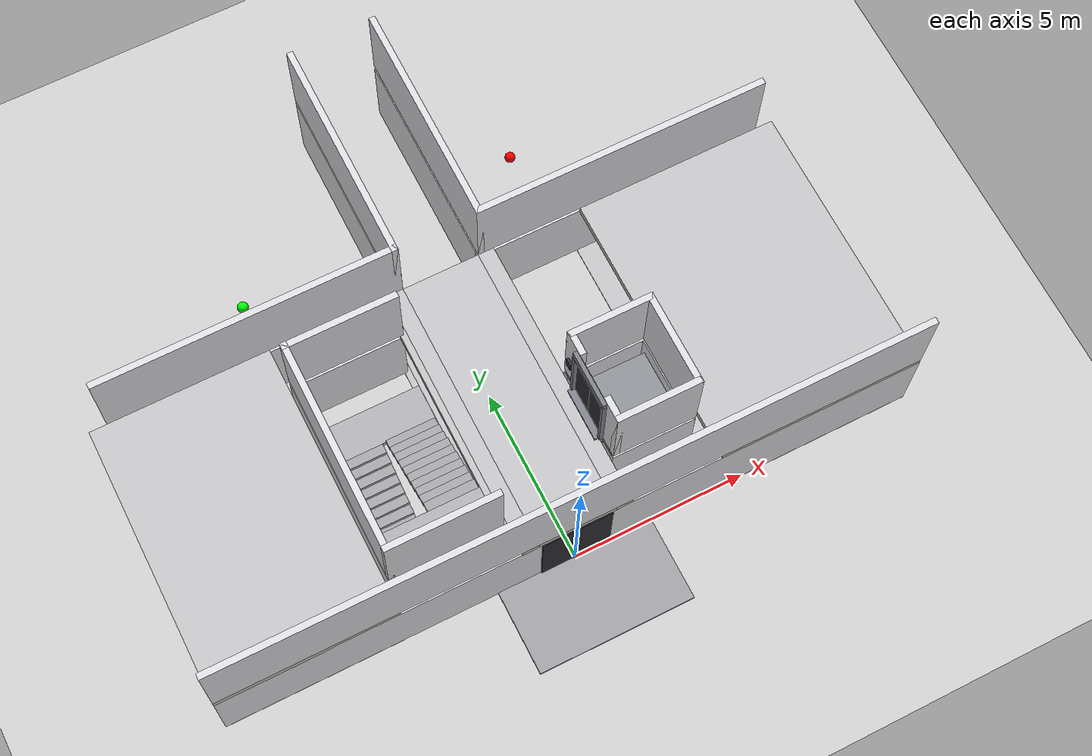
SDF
<sdf version="1.7">
 <world name="generated_world">
  <include><uri>model://sun</uri></include>
  <include><uri>model://ground_plane</uri></include>
  <model name="generated_building">
   <static>true</static>
   <link name="entrance_apron">
    <pose>0.0000 -1.2000 0.0400 0.0000 0.0000 0.0000</pose>
    <collision name="entrance_apron_collision">
     <geometry><box><size>4.5000 2.4000 0.0800</size></box></geometry>
    </collision>
    <visual name="entrance_apron_visual">
     <geometry><box><size>4.5000 2.4000 0.0800</size></box></geometry>
     <material><ambient>0.62 0.62 0.64 1</ambient><diffuse>0.62 0.62 0.64 1</diffuse></material>
    </visual>
    <gravity>false</gravity>
   </link>
   <link name="slab_floor_0_1">
    <pose>-7.4700 3.9250 -0.1100 0.0000 0.0000 0.0000</pose>
    <collision name="slab_floor_0_1_collision">
     <geometry><box><size>5.0600 7.8500 0.2200</size></box></geometry>
    </collision>
    <visual name="slab_floor_0_1_visual">
     <geometry><box><size>5.0600 7.8500 0.2200</size></box></geometry>
     <material><ambient>0.76 0.76 0.77 1</ambient><diffuse>0.76 0.76 0.77 1</diffuse></material>
    </visual>
    <gravity>false</gravity>
   </link>
   <link name="slab_floor_0_2">
    <pose>-1.3300 3.9250 -0.1100 0.0000 0.0000 0.0000</pose>
    <collision name="slab_floor_0_2_collision">
     <geometry><box><size>0.4600 7.8500 0.2200</size></box></geometry>
    </collision>
    <visual name="slab_floor_0_2_visual">
     <geometry><box><size>0.4600 7.8500 0.2200</size></box></geometry>
     <material><ambient>0.76 0.76 0.77 1</ambient><diffuse>0.76 0.76 0.77 1</diffuse></material>
    </visual>
    <gravity>false</gravity>
   </link>
   <link name="slab_floor_0_3">
    <pose>0.0000 3.9250 -0.1100 0.0000 0.0000 0.0000</pose>
    <collision name="slab_floor_0_3_collision">
     <geometry><box><size>2.2000 7.8500 0.2200</size></box></geometry>
    </collision>
    <visual name="slab_floor_0_3_visual">
     <geometry><box><size>2.2000 7.8500 0.2200</size></box></geometry>
     <material><ambient>0.76 0.76 0.77 1</ambient><diffuse>0.76 0.76 0.77 1</diffuse></material>
    </visual>
    <gravity>false</gravity>
   </link>
   <link name="slab_floor_0_4">
    <pose>1.3300 3.9250 -0.1100 0.0000 0.0000 0.0000</pose>
    <collision name="slab_floor_0_4_collision">
     <geometry><box><size>0.4600 7.8500 0.2200</size></box></geometry>
    </collision>
    <visual name="slab_floor_0_4_visual">
     <geometry><box><size>0.4600 7.8500 0.2200</size></box></geometry>
     <material><ambient>0.76 0.76 0.77 1</ambient><diffuse>0.76 0.76 0.77 1</diffuse></material>
    </visual>
    <gravity>false</gravity>
   </link>
   <link name="slab_floor_0_5">
    <pose>7.0700 3.9250 -0.1100 0.0000 0.0000 0.0000</pose>
    <collision name="slab_floor_0_5_collision">
     <geometry><box><size>5.8600 7.8500 0.2200</size></box></geometry>
    </collision>
    <visual name="slab_floor_0_5_visual">
     <geometry><box><size>5.8600 7.8500 0.2200</size></box></geometry>
     <material><ambient>0.76 0.76 0.77 1</ambient><diffuse>0.76 0.76 0.77 1</diffuse></material>
    </visual>
    <gravity>false</gravity>
   </link>
   <link name="stair_edge_infill_floor_0">
    <pose>-1.6500 3.8500 -0.1100 0.0000 0.0000 0.0000</pose>
    <collision name="stair_edge_infill_floor_0_collision">
     <geometry><box><size>0.1800 6.0000 0.2200</size></box></geometry>
    </collision>
    <visual name="stair_edge_infill_floor_0_visual">
     <geometry><box><size>0.1800 6.0000 0.2200</size></box></geometry>
     <material><ambient>0.76 0.76 0.77 1</ambient><diffuse>0.76 0.76 0.77 1</diffuse></material>
    </visual>
    <gravity>false</gravity>
   </link>
   <link name="exterior_south_entrance_left">
    <pose>-5.5100 0.0900 1.2250 0.0000 0.0000 0.0000</pose>
    <collision name="exterior_south_entrance_left_collision">
     <geometry><box><size>8.9800 0.1800 2.4500</size></box></geometry>
    </collision>
    <visual name="exterior_south_entrance_left_visual">
     <geometry><box><size>8.9800 0.1800 2.4500</size></box></geometry>
     <material><ambient>0.86 0.86 0.88 1</ambient><diffuse>0.86 0.86 0.88 1</diffuse></material>
    </visual>
    <gravity>false</gravity>
   </link>
   <link name="exterior_south_entrance_right">
    <pose>5.5100 0.0900 1.2250 0.0000 0.0000 0.0000</pose>
    <collision name="exterior_south_entrance_right_collision">
     <geometry><box><size>8.9800 0.1800 2.4500</size></box></geometry>
    </collision>
    <visual name="exterior_south_entrance_right_visual">
     <geometry><box><size>8.9800 0.1800 2.4500</size></box></geometry>
     <material><ambient>0.86 0.86 0.88 1</ambient><diffuse>0.86 0.86 0.88 1</diffuse></material>
    </visual>
    <gravity>false</gravity>
   </link>
   <link name="floor_0_room_0_corridor_wall_lower">
    <pose>-1.1900 11.0575 1.2250 0.0000 0.0000 0.0000</pose>
    <collision name="floor_0_room_0_corridor_wall_lower_collision">
     <geometry><box><size>0.1800 6.4150 2.4500</size></box></geometry>
    </collision>
    <visual name="floor_0_room_0_corridor_wall_lower_visual">
     <geometry><box><size>0.1800 6.4150 2.4500</size></box></geometry>
     <material><ambient>0.86 0.86 0.88 1</ambient><diffuse>0.86 0.86 0.88 1</diffuse></material>
    </visual>
    <gravity>false</gravity>
   </link>
   <link name="floor_0_room_0_south_wall">
    <pose>-5.3000 7.9400 1.2250 0.0000 0.0000 0.0000</pose>
    <collision name="floor_0_room_0_south_wall_collision">
     <geometry><box><size>8.4000 0.1800 2.4500</size></box></geometry>
    </collision>
    <visual name="floor_0_room_0_south_wall_visual">
     <geometry><box><size>8.4000 0.1800 2.4500</size></box></geometry>
     <material><ambient>0.86 0.86 0.88 1</ambient><diffuse>0.86 0.86 0.88 1</diffuse></material>
    </visual>
    <gravity>false</gravity>
   </link>
   <link name="floor_0_room_1_corridor_wall_lower">
    <pose>1.1900 11.0575 1.2250 0.0000 0.0000 0.0000</pose>
    <collision name="floor_0_room_1_corridor_wall_lower_collision">
     <geometry><box><size>0.1800 6.4150 2.4500</size></box></geometry>
    </collision>
    <visual name="floor_0_room_1_corridor_wall_lower_visual">
     <geometry><box><size>0.1800 6.4150 2.4500</size></box></geometry>
     <material><ambient>0.86 0.86 0.88 1</ambient><diffuse>0.86 0.86 0.88 1</diffuse></material>
    </visual>
    <gravity>false</gravity>
   </link>
   <link name="floor_0_room_1_south_wall">
    <pose>5.3000 7.9400 1.2250 0.0000 0.0000 0.0000</pose>
    <collision name="floor_0_room_1_south_wall_collision">
     <geometry><box><size>8.4000 0.1800 2.4500</size></box></geometry>
    </collision>
    <visual name="floor_0_room_1_south_wall_visual">
     <geometry><box><size>8.4000 0.1800 2.4500</size></box></geometry>
     <material><ambient>0.86 0.86 0.88 1</ambient><diffuse>0.86 0.86 0.88 1</diffuse></material>
    </visual>
    <gravity>false</gravity>
   </link>
   <link name="stair_core_floor_0_west">
    <pose>-4.7600 3.8500 1.2250 0.0000 0.0000 0.0000</pose>
    <collision name="stair_core_floor_0_west_collision">
     <geometry><box><size>0.1800 6.0000 2.4500</size></box></geometry>
    </collision>
    <visual name="stair_core_floor_0_west_visual">
     <geometry><box><size>0.1800 6.0000 2.4500</size></box></geometry>
     <material><ambient>0.86 0.86 0.88 1</ambient><diffuse>0.86 0.86 0.88 1</diffuse></material>
    </visual>
    <gravity>false</gravity>
   </link>
   <link name="stair_core_floor_0_south">
    <pose>-3.2500 0.9400 1.2250 0.0000 0.0000 0.0000</pose>
    <collision name="stair_core_floor_0_south_collision">
     <geometry><box><size>3.2000 0.1800 2.4500</size></box></geometry>
    </collision>
    <visual name="stair_core_floor_0_south_visual">
     <geometry><box><size>3.2000 0.1800 2.4500</size></box></geometry>
     <material><ambient>0.86 0.86 0.88 1</ambient><diffuse>0.86 0.86 0.88 1</diffuse></material>
    </visual>
    <gravity>false</gravity>
   </link>
   <link name="stair_core_floor_0_north">
    <pose>-3.2500 6.7600 1.2250 0.0000 0.0000 0.0000</pose>
    <collision name="stair_core_floor_0_north_collision">
     <geometry><box><size>3.2000 0.1800 2.4500</size></box></geometry>
    </collision>
    <visual name="stair_core_floor_0_north_visual">
     <geometry><box><size>3.2000 0.1800 2.4500</size></box></geometry>
     <material><ambient>0.86 0.86 0.88 1</ambient><diffuse>0.86 0.86 0.88 1</diffuse></material>
    </visual>
    <gravity>false</gravity>
   </link>
   <link name="elevator_core_floor_0_west_lower">
    <pose>1.7400 1.6150 1.2250 0.0000 0.0000 0.0000</pose>
    <collision name="elevator_core_floor_0_west_lower_collision">
     <geometry><box><size>0.1800 0.7300 2.4500</size></box></geometry>
    </collision>
    <visual name="elevator_core_floor_0_west_lower_visual">
     <geometry><box><size>0.1800 0.7300 2.4500</size></box></geometry>
     <material><ambient>0.86 0.86 0.88 1</ambient><diffuse>0.86 0.86 0.88 1</diffuse></material>
    </visual>
    <gravity>false</gravity>
   </link>
   <link name="elevator_core_floor_0_west_upper">
    <pose>1.7400 3.5850 1.2250 0.0000 0.0000 0.0000</pose>
    <collision name="elevator_core_floor_0_west_upper_collision">
     <geometry><box><size>0.1800 0.7300 2.4500</size></box></geometry>
    </collision>
    <visual name="elevator_core_floor_0_west_upper_visual">
     <geometry><box><size>0.1800 0.7300 2.4500</size></box></geometry>
     <material><ambient>0.86 0.86 0.88 1</ambient><diffuse>0.86 0.86 0.88 1</diffuse></material>
    </visual>
    <gravity>false</gravity>
   </link>
   <link name="elevator_core_floor_0_east">
    <pose>3.9600 2.6000 1.2250 0.0000 0.0000 0.0000</pose>
    <collision name="elevator_core_floor_0_east_collision">
     <geometry><box><size>0.1800 2.7000 2.4500</size></box></geometry>
    </collision>
    <visual name="elevator_core_floor_0_east_visual">
     <geometry><box><size>0.1800 2.7000 2.4500</size></box></geometry>
     <material><ambient>0.86 0.86 0.88 1</ambient><diffuse>0.86 0.86 0.88 1</diffuse></material>
    </visual>
    <gravity>false</gravity>
   </link>
   <link name="elevator_core_floor_0_south">
    <pose>2.8500 1.3400 1.2250 0.0000 0.0000 0.0000</pose>
    <collision name="elevator_core_floor_0_south_collision">
     <geometry><box><size>2.4000 0.1800 2.4500</size></box></geometry>
    </collision>
    <visual name="elevator_core_floor_0_south_visual">
     <geometry><box><size>2.4000 0.1800 2.4500</size></box></geometry>
     <material><ambient>0.86 0.86 0.88 1</ambient><diffuse>0.86 0.86 0.88 1</diffuse></material>
    </visual>
    <gravity>false</gravity>
   </link>
   <link name="elevator_core_floor_0_north">
    <pose>2.8500 3.8600 1.2250 0.0000 0.0000 0.0000</pose>
    <collision name="elevator_core_floor_0_north_collision">
     <geometry><box><size>2.4000 0.1800 2.4500</size></box></geometry>
    </collision>
    <visual name="elevator_core_floor_0_north_visual">
     <geometry><box><size>2.4000 0.1800 2.4500</size></box></geometry>
     <material><ambient>0.86 0.86 0.88 1</ambient><diffuse>0.86 0.86 0.88 1</diffuse></material>
    </visual>
    <gravity>false</gravity>
   </link>
   <link name="elevator_threshold_floor_0">
    <pose>1.5400 2.6000 0.0300 0.0000 0.0000 0.0000</pose>
    <collision name="elevator_threshold_floor_0_collision">
     <geometry><box><size>0.2200 1.5000 0.0600</size></box></geometry>
    </collision>
    <visual name="elevator_threshold_floor_0_visual">
     <geometry><box><size>0.2200 1.5000 0.0600</size></box></geometry>
     <material><ambient>0.50 0.51 0.54 1</ambient><diffuse>0.50 0.51 0.54 1</diffuse></material>
    </visual>
    <gravity>false</gravity>
   </link>
   <link name="elevator_sill_infill_floor_0">
    <pose>1.6750 2.6000 -0.1100 0.0000 0.0000 0.0000</pose>
    <collision name="elevator_sill_infill_floor_0_collision">
     <geometry><box><size>0.0500 2.5200 0.2200</size></box></geometry>
    </collision>
    <visual name="elevator_sill_infill_floor_0_visual">
     <geometry><box><size>0.0500 2.5200 0.2200</size></box></geometry>
     <material><ambient>0.72 0.72 0.73 1</ambient><diffuse>0.72 0.72 0.73 1</diffuse></material>
    </visual>
    <gravity>false</gravity>
   </link>
   <link name="elevator_header_floor_0">
    <pose>1.5900 2.6000 2.2600 0.0000 0.0000 0.0000</pose>
    <collision name="elevator_header_floor_0_collision">
     <geometry><box><size>0.1200 1.6000 0.2800</size></box></geometry>
    </collision>
    <visual name="elevator_header_floor_0_visual">
     <geometry><box><size>0.1200 1.6000 0.2800</size></box></geometry>
     <material><ambient>0.50 0.51 0.54 1</ambient><diffuse>0.50 0.51 0.54 1</diffuse></material>
    </visual>
    <gravity>false</gravity>
   </link>
   <link name="elevator_jamb_left_floor_0">
    <pose>1.5900 1.8500 1.1000 0.0000 0.0000 0.0000</pose>
    <collision name="elevator_jamb_left_floor_0_collision">
     <geometry><box><size>0.1200 0.1000 2.2000</size></box></geometry>
    </collision>
    <visual name="elevator_jamb_left_floor_0_visual">
     <geometry><box><size>0.1200 0.1000 2.2000</size></box></geometry>
     <material><ambient>0.50 0.51 0.54 1</ambient><diffuse>0.50 0.51 0.54 1</diffuse></material>
    </visual>
    <gravity>false</gravity>
   </link>
   <link name="elevator_jamb_right_floor_0">
    <pose>1.5900 3.3500 1.1000 0.0000 0.0000 0.0000</pose>
    <collision name="elevator_jamb_right_floor_0_collision">
     <geometry><box><size>0.1200 0.1000 2.2000</size></box></geometry>
    </collision>
    <visual name="elevator_jamb_right_floor_0_visual">
     <geometry><box><size>0.1200 0.1000 2.2000</size></box></geometry>
     <material><ambient>0.50 0.51 0.54 1</ambient><diffuse>0.50 0.51 0.54 1</diffuse></material>
    </visual>
    <gravity>false</gravity>
   </link>
   <link name="elevator_call_panel_floor_0">
    <pose>1.5700 3.5800 1.2000 0.0000 0.0000 0.0000</pose>
    <collision name="elevator_call_panel_floor_0_collision">
     <geometry><box><size>0.0800 0.2200 0.3200</size></box></geometry>
    </collision>
    <visual name="elevator_call_panel_floor_0_visual">
     <geometry><box><size>0.0800 0.2200 0.3200</size></box></geometry>
     <material><ambient>0.20 0.20 0.24 1</ambient><diffuse>0.20 0.20 0.24 1</diffuse></material>
    </visual>
    <gravity>false</gravity>
   </link>
   <link name="slab_floor_1_1">
    <pose>-7.4700 3.9250 2.4900 0.0000 0.0000 0.0000</pose>
    <collision name="slab_floor_1_1_collision">
     <geometry><box><size>5.0600 7.8500 0.2200</size></box></geometry>
    </collision>
    <visual name="slab_floor_1_1_visual">
     <geometry><box><size>5.0600 7.8500 0.2200</size></box></geometry>
     <material><ambient>0.76 0.76 0.77 1</ambient><diffuse>0.76 0.76 0.77 1</diffuse></material>
    </visual>
    <gravity>false</gravity>
   </link>
   <link name="slab_floor_1_2">
    <pose>-1.3300 3.9250 2.4900 0.0000 0.0000 0.0000</pose>
    <collision name="slab_floor_1_2_collision">
     <geometry><box><size>0.4600 7.8500 0.2200</size></box></geometry>
    </collision>
    <visual name="slab_floor_1_2_visual">
     <geometry><box><size>0.4600 7.8500 0.2200</size></box></geometry>
     <material><ambient>0.76 0.76 0.77 1</ambient><diffuse>0.76 0.76 0.77 1</diffuse></material>
    </visual>
    <gravity>false</gravity>
   </link>
   <link name="slab_floor_1_3">
    <pose>0.0000 3.9250 2.4900 0.0000 0.0000 0.0000</pose>
    <collision name="slab_floor_1_3_collision">
     <geometry><box><size>2.2000 7.8500 0.2200</size></box></geometry>
    </collision>
    <visual name="slab_floor_1_3_visual">
     <geometry><box><size>2.2000 7.8500 0.2200</size></box></geometry>
     <material><ambient>0.76 0.76 0.77 1</ambient><diffuse>0.76 0.76 0.77 1</diffuse></material>
    </visual>
    <gravity>false</gravity>
   </link>
   <link name="slab_floor_1_4">
    <pose>1.3300 3.9250 2.4900 0.0000 0.0000 0.0000</pose>
    <collision name="slab_floor_1_4_collision">
     <geometry><box><size>0.4600 7.8500 0.2200</size></box></geometry>
    </collision>
    <visual name="slab_floor_1_4_visual">
     <geometry><box><size>0.4600 7.8500 0.2200</size></box></geometry>
     <material><ambient>0.76 0.76 0.77 1</ambient><diffuse>0.76 0.76 0.77 1</diffuse></material>
    </visual>
    <gravity>false</gravity>
   </link>
   <link name="slab_floor_1_5">
    <pose>7.0700 3.9250 2.4900 0.0000 0.0000 0.0000</pose>
    <collision name="slab_floor_1_5_collision">
     <geometry><box><size>5.8600 7.8500 0.2200</size></box></geometry>
    </collision>
    <visual name="slab_floor_1_5_visual">
     <geometry><box><size>5.8600 7.8500 0.2200</size></box></geometry>
     <material><ambient>0.76 0.76 0.77 1</ambient><diffuse>0.76 0.76 0.77 1</diffuse></material>
    </visual>
    <gravity>false</gravity>
   </link>
   <link name="stair_edge_infill_floor_1">
    <pose>-1.6500 3.8500 2.4900 0.0000 0.0000 0.0000</pose>
    <collision name="stair_edge_infill_floor_1_collision">
     <geometry><box><size>0.1800 6.0000 0.2200</size></box></geometry>
    </collision>
    <visual name="stair_edge_infill_floor_1_visual">
     <geometry><box><size>0.1800 6.0000 0.2200</size></box></geometry>
     <material><ambient>0.76 0.76 0.77 1</ambient><diffuse>0.76 0.76 0.77 1</diffuse></material>
    </visual>
    <gravity>false</gravity>
   </link>
   <link name="exterior_south_floor_1">
    <pose>0.0000 0.0900 3.8250 0.0000 0.0000 0.0000</pose>
    <collision name="exterior_south_floor_1_collision">
     <geometry><box><size>20.0000 0.1800 2.4500</size></box></geometry>
    </collision>
    <visual name="exterior_south_floor_1_visual">
     <geometry><box><size>20.0000 0.1800 2.4500</size></box></geometry>
     <material><ambient>0.86 0.86 0.88 1</ambient><diffuse>0.86 0.86 0.88 1</diffuse></material>
    </visual>
    <gravity>false</gravity>
   </link>
   <link name="floor_1_room_0_corridor_wall_lower">
    <pose>-1.1900 11.0575 3.8250 0.0000 0.0000 0.0000</pose>
    <collision name="floor_1_room_0_corridor_wall_lower_collision">
     <geometry><box><size>0.1800 6.4150 2.4500</size></box></geometry>
    </collision>
    <visual name="floor_1_room_0_corridor_wall_lower_visual">
     <geometry><box><size>0.1800 6.4150 2.4500</size></box></geometry>
     <material><ambient>0.86 0.86 0.88 1</ambient><diffuse>0.86 0.86 0.88 1</diffuse></material>
    </visual>
    <gravity>false</gravity>
   </link>
   <link name="floor_1_room_0_south_wall">
    <pose>-5.3000 7.9400 3.8250 0.0000 0.0000 0.0000</pose>
    <collision name="floor_1_room_0_south_wall_collision">
     <geometry><box><size>8.4000 0.1800 2.4500</size></box></geometry>
    </collision>
    <visual name="floor_1_room_0_south_wall_visual">
     <geometry><box><size>8.4000 0.1800 2.4500</size></box></geometry>
     <material><ambient>0.86 0.86 0.88 1</ambient><diffuse>0.86 0.86 0.88 1</diffuse></material>
    </visual>
    <gravity>false</gravity>
   </link>
   <link name="floor_1_room_1_corridor_wall_lower">
    <pose>1.1900 11.0575 3.8250 0.0000 0.0000 0.0000</pose>
    <collision name="floor_1_room_1_corridor_wall_lower_collision">
     <geometry><box><size>0.1800 6.4150 2.4500</size></box></geometry>
    </collision>
    <visual name="floor_1_room_1_corridor_wall_lower_visual">
     <geometry><box><size>0.1800 6.4150 2.4500</size></box></geometry>
     <material><ambient>0.86 0.86 0.88 1</ambient><diffuse>0.86 0.86 0.88 1</diffuse></material>
    </visual>
    <gravity>false</gravity>
   </link>
   <link name="floor_1_room_1_south_wall">
    <pose>5.3000 7.9400 3.8250 0.0000 0.0000 0.0000</pose>
    <collision name="floor_1_room_1_south_wall_collision">
     <geometry><box><size>8.4000 0.1800 2.4500</size></box></geometry>
    </collision>
    <visual name="floor_1_room_1_south_wall_visual">
     <geometry><box><size>8.4000 0.1800 2.4500</size></box></geometry>
     <material><ambient>0.86 0.86 0.88 1</ambient><diffuse>0.86 0.86 0.88 1</diffuse></material>
    </visual>
    <gravity>false</gravity>
   </link>
   <link name="stair_core_floor_1_west">
    <pose>-4.7600 3.8500 3.8250 0.0000 0.0000 0.0000</pose>
    <collision name="stair_core_floor_1_west_collision">
     <geometry><box><size>0.1800 6.0000 2.4500</size></box></geometry>
    </collision>
    <visual name="stair_core_floor_1_west_visual">
     <geometry><box><size>0.1800 6.0000 2.4500</size></box></geometry>
     <material><ambient>0.86 0.86 0.88 1</ambient><diffuse>0.86 0.86 0.88 1</diffuse></material>
    </visual>
    <gravity>false</gravity>
   </link>
   <link name="stair_core_floor_1_south">
    <pose>-3.2500 0.9400 3.8250 0.0000 0.0000 0.0000</pose>
    <collision name="stair_core_floor_1_south_collision">
     <geometry><box><size>3.2000 0.1800 2.4500</size></box></geometry>
    </collision>
    <visual name="stair_core_floor_1_south_visual">
     <geometry><box><size>3.2000 0.1800 2.4500</size></box></geometry>
     <material><ambient>0.86 0.86 0.88 1</ambient><diffuse>0.86 0.86 0.88 1</diffuse></material>
    </visual>
    <gravity>false</gravity>
   </link>
   <link name="stair_core_floor_1_north">
    <pose>-3.2500 6.7600 3.8250 0.0000 0.0000 0.0000</pose>
    <collision name="stair_core_floor_1_north_collision">
     <geometry><box><size>3.2000 0.1800 2.4500</size></box></geometry>
    </collision>
    <visual name="stair_core_floor_1_north_visual">
     <geometry><box><size>3.2000 0.1800 2.4500</size></box></geometry>
     <material><ambient>0.86 0.86 0.88 1</ambient><diffuse>0.86 0.86 0.88 1</diffuse></material>
    </visual>
    <gravity>false</gravity>
   </link>
   <link name="elevator_core_floor_1_west_lower">
    <pose>1.7400 1.6150 3.8250 0.0000 0.0000 0.0000</pose>
    <collision name="elevator_core_floor_1_west_lower_collision">
     <geometry><box><size>0.1800 0.7300 2.4500</size></box></geometry>
    </collision>
    <visual name="elevator_core_floor_1_west_lower_visual">
     <geometry><box><size>0.1800 0.7300 2.4500</size></box></geometry>
     <material><ambient>0.86 0.86 0.88 1</ambient><diffuse>0.86 0.86 0.88 1</diffuse></material>
    </visual>
    <gravity>false</gravity>
   </link>
   <link name="elevator_core_floor_1_west_upper">
    <pose>1.7400 3.5850 3.8250 0.0000 0.0000 0.0000</pose>
    <collision name="elevator_core_floor_1_west_upper_collision">
     <geometry><box><size>0.1800 0.7300 2.4500</size></box></geometry>
    </collision>
    <visual name="elevator_core_floor_1_west_upper_visual">
     <geometry><box><size>0.1800 0.7300 2.4500</size></box></geometry>
     <material><ambient>0.86 0.86 0.88 1</ambient><diffuse>0.86 0.86 0.88 1</diffuse></material>
    </visual>
    <gravity>false</gravity>
   </link>
   <link name="elevator_core_floor_1_east">
    <pose>3.9600 2.6000 3.8250 0.0000 0.0000 0.0000</pose>
    <collision name="elevator_core_floor_1_east_collision">
     <geometry><box><size>0.1800 2.7000 2.4500</size></box></geometry>
    </collision>
    <visual name="elevator_core_floor_1_east_visual">
     <geometry><box><size>0.1800 2.7000 2.4500</size></box></geometry>
     <material><ambient>0.86 0.86 0.88 1</ambient><diffuse>0.86 0.86 0.88 1</diffuse></material>
    </visual>
    <gravity>false</gravity>
   </link>
   <link name="elevator_core_floor_1_south">
    <pose>2.8500 1.3400 3.8250 0.0000 0.0000 0.0000</pose>
    <collision name="elevator_core_floor_1_south_collision">
     <geometry><box><size>2.4000 0.1800 2.4500</size></box></geometry>
    </collision>
    <visual name="elevator_core_floor_1_south_visual">
     <geometry><box><size>2.4000 0.1800 2.4500</size></box></geometry>
     <material><ambient>0.86 0.86 0.88 1</ambient><diffuse>0.86 0.86 0.88 1</diffuse></material>
    </visual>
    <gravity>false</gravity>
   </link>
   <link name="elevator_core_floor_1_north">
    <pose>2.8500 3.8600 3.8250 0.0000 0.0000 0.0000</pose>
    <collision name="elevator_core_floor_1_north_collision">
     <geometry><box><size>2.4000 0.1800 2.4500</size></box></geometry>
    </collision>
    <visual name="elevator_core_floor_1_north_visual">
     <geometry><box><size>2.4000 0.1800 2.4500</size></box></geometry>
     <material><ambient>0.86 0.86 0.88 1</ambient><diffuse>0.86 0.86 0.88 1</diffuse></material>
    </visual>
    <gravity>false</gravity>
   </link>
   <link name="elevator_threshold_floor_1">
    <pose>1.5400 2.6000 2.6300 0.0000 0.0000 0.0000</pose>
    <collision name="elevator_threshold_floor_1_collision">
     <geometry><box><size>0.2200 1.5000 0.0600</size></box></geometry>
    </collision>
    <visual name="elevator_threshold_floor_1_visual">
     <geometry><box><size>0.2200 1.5000 0.0600</size></box></geometry>
     <material><ambient>0.50 0.51 0.54 1</ambient><diffuse>0.50 0.51 0.54 1</diffuse></material>
    </visual>
    <gravity>false</gravity>
   </link>
   <link name="elevator_sill_infill_floor_1">
    <pose>1.6750 2.6000 2.4900 0.0000 0.0000 0.0000</pose>
    <collision name="elevator_sill_infill_floor_1_collision">
     <geometry><box><size>0.0500 2.5200 0.2200</size></box></geometry>
    </collision>
    <visual name="elevator_sill_infill_floor_1_visual">
     <geometry><box><size>0.0500 2.5200 0.2200</size></box></geometry>
     <material><ambient>0.72 0.72 0.73 1</ambient><diffuse>0.72 0.72 0.73 1</diffuse></material>
    </visual>
    <gravity>false</gravity>
   </link>
   <link name="elevator_header_floor_1">
    <pose>1.5900 2.6000 4.8600 0.0000 0.0000 0.0000</pose>
    <collision name="elevator_header_floor_1_collision">
     <geometry><box><size>0.1200 1.6000 0.2800</size></box></geometry>
    </collision>
    <visual name="elevator_header_floor_1_visual">
     <geometry><box><size>0.1200 1.6000 0.2800</size></box></geometry>
     <material><ambient>0.50 0.51 0.54 1</ambient><diffuse>0.50 0.51 0.54 1</diffuse></material>
    </visual>
    <gravity>false</gravity>
   </link>
   <link name="elevator_jamb_left_floor_1">
    <pose>1.5900 1.8500 3.7000 0.0000 0.0000 0.0000</pose>
    <collision name="elevator_jamb_left_floor_1_collision">
     <geometry><box><size>0.1200 0.1000 2.2000</size></box></geometry>
    </collision>
    <visual name="elevator_jamb_left_floor_1_visual">
     <geometry><box><size>0.1200 0.1000 2.2000</size></box></geometry>
     <material><ambient>0.50 0.51 0.54 1</ambient><diffuse>0.50 0.51 0.54 1</diffuse></material>
    </visual>
    <gravity>false</gravity>
   </link>
   <link name="elevator_jamb_right_floor_1">
    <pose>1.5900 3.3500 3.7000 0.0000 0.0000 0.0000</pose>
    <collision name="elevator_jamb_right_floor_1_collision">
     <geometry><box><size>0.1200 0.1000 2.2000</size></box></geometry>
    </collision>
    <visual name="elevator_jamb_right_floor_1_visual">
     <geometry><box><size>0.1200 0.1000 2.2000</size></box></geometry>
     <material><ambient>0.50 0.51 0.54 1</ambient><diffuse>0.50 0.51 0.54 1</diffuse></material>
    </visual>
    <gravity>false</gravity>
   </link>
   <link name="elevator_call_panel_floor_1">
    <pose>1.5700 3.5800 3.8000 0.0000 0.0000 0.0000</pose>
    <collision name="elevator_call_panel_floor_1_collision">
     <geometry><box><size>0.0800 0.2200 0.3200</size></box></geometry>
    </collision>
    <visual name="elevator_call_panel_floor_1_visual">
     <geometry><box><size>0.0800 0.2200 0.3200</size></box></geometry>
     <material><ambient>0.20 0.20 0.24 1</ambient><diffuse>0.20 0.20 0.24 1</diffuse></material>
    </visual>
    <gravity>false</gravity>
   </link>
   <link name="stair_floor_landing_floor_0">
    <pose>-3.2500 1.5500 -0.0900 0.0000 0.0000 0.0000</pose>
    <collision name="stair_floor_landing_floor_0_collision">
     <geometry><box><size>3.0200 1.0000 0.1800</size></box></geometry>
    </collision>
    <visual name="stair_floor_landing_floor_0_visual">
     <geometry><box><size>3.0200 1.0000 0.1800</size></box></geometry>
     <material><ambient>0.68 0.68 0.70 1</ambient><diffuse>0.68 0.68 0.70 1</diffuse></material>
    </visual>
    <gravity>false</gravity>
   </link>
   <link name="stair_floor_landing_floor_1">
    <pose>-3.2500 1.5500 2.5100 0.0000 0.0000 0.0000</pose>
    <collision name="stair_floor_landing_floor_1_collision">
     <geometry><box><size>3.0200 1.0000 0.1800</size></box></geometry>
    </collision>
    <visual name="stair_floor_landing_floor_1_visual">
     <geometry><box><size>3.0200 1.0000 0.1800</size></box></geometry>
     <material><ambient>0.68 0.68 0.70 1</ambient><diffuse>0.68 0.68 0.70 1</diffuse></material>
    </visual>
    <gravity>false</gravity>
   </link>
   <link name="stair_flight_a_floor_0_step_0">
    <pose>-4.0150 2.1800 0.0650 0.0000 0.0000 0.0000</pose>
    <collision name="stair_flight_a_floor_0_step_0_collision">
     <geometry><box><size>1.4300 0.2600 0.1300</size></box></geometry>
    </collision>
    <visual name="stair_flight_a_floor_0_step_0_visual">
     <geometry><box><size>1.4300 0.2600 0.1300</size></box></geometry>
     <material><ambient>0.64 0.64 0.66 1</ambient><diffuse>0.64 0.64 0.66 1</diffuse></material>
    </visual>
    <gravity>false</gravity>
   </link>
   <link name="stair_flight_a_floor_0_step_1">
    <pose>-4.0150 2.4400 0.1950 0.0000 0.0000 0.0000</pose>
    <collision name="stair_flight_a_floor_0_step_1_collision">
     <geometry><box><size>1.4300 0.2600 0.1300</size></box></geometry>
    </collision>
    <visual name="stair_flight_a_floor_0_step_1_visual">
     <geometry><box><size>1.4300 0.2600 0.1300</size></box></geometry>
     <material><ambient>0.64 0.64 0.66 1</ambient><diffuse>0.64 0.64 0.66 1</diffuse></material>
    </visual>
    <gravity>false</gravity>
   </link>
   <link name="stair_flight_a_floor_0_step_2">
    <pose>-4.0150 2.7000 0.3250 0.0000 0.0000 0.0000</pose>
    <collision name="stair_flight_a_floor_0_step_2_collision">
     <geometry><box><size>1.4300 0.2600 0.1300</size></box></geometry>
    </collision>
    <visual name="stair_flight_a_floor_0_step_2_visual">
     <geometry><box><size>1.4300 0.2600 0.1300</size></box></geometry>
     <material><ambient>0.64 0.64 0.66 1</ambient><diffuse>0.64 0.64 0.66 1</diffuse></material>
    </visual>
    <gravity>false</gravity>
   </link>
   <link name="stair_flight_a_floor_0_step_3">
    <pose>-4.0150 2.9600 0.4550 0.0000 0.0000 0.0000</pose>
    <collision name="stair_flight_a_floor_0_step_3_collision">
     <geometry><box><size>1.4300 0.2600 0.1300</size></box></geometry>
    </collision>
    <visual name="stair_flight_a_floor_0_step_3_visual">
     <geometry><box><size>1.4300 0.2600 0.1300</size></box></geometry>
     <material><ambient>0.64 0.64 0.66 1</ambient><diffuse>0.64 0.64 0.66 1</diffuse></material>
    </visual>
    <gravity>false</gravity>
   </link>
   <link name="stair_flight_a_floor_0_step_4">
    <pose>-4.0150 3.2200 0.5850 0.0000 0.0000 0.0000</pose>
    <collision name="stair_flight_a_floor_0_step_4_collision">
     <geometry><box><size>1.4300 0.2600 0.1300</size></box></geometry>
    </collision>
    <visual name="stair_flight_a_floor_0_step_4_visual">
     <geometry><box><size>1.4300 0.2600 0.1300</size></box></geometry>
     <material><ambient>0.64 0.64 0.66 1</ambient><diffuse>0.64 0.64 0.66 1</diffuse></material>
    </visual>
    <gravity>false</gravity>
   </link>
   <link name="stair_flight_a_floor_0_step_5">
    <pose>-4.0150 3.4800 0.7150 0.0000 0.0000 0.0000</pose>
    <collision name="stair_flight_a_floor_0_step_5_collision">
     <geometry><box><size>1.4300 0.2600 0.1300</size></box></geometry>
    </collision>
    <visual name="stair_flight_a_floor_0_step_5_visual">
     <geometry><box><size>1.4300 0.2600 0.1300</size></box></geometry>
     <material><ambient>0.64 0.64 0.66 1</ambient><diffuse>0.64 0.64 0.66 1</diffuse></material>
    </visual>
    <gravity>false</gravity>
   </link>
   <link name="stair_flight_a_floor_0_step_6">
    <pose>-4.0150 3.7400 0.8450 0.0000 0.0000 0.0000</pose>
    <collision name="stair_flight_a_floor_0_step_6_collision">
     <geometry><box><size>1.4300 0.2600 0.1300</size></box></geometry>
    </collision>
    <visual name="stair_flight_a_floor_0_step_6_visual">
     <geometry><box><size>1.4300 0.2600 0.1300</size></box></geometry>
     <material><ambient>0.64 0.64 0.66 1</ambient><diffuse>0.64 0.64 0.66 1</diffuse></material>
    </visual>
    <gravity>false</gravity>
   </link>
   <link name="stair_flight_a_floor_0_step_7">
    <pose>-4.0150 4.0000 0.9750 0.0000 0.0000 0.0000</pose>
    <collision name="stair_flight_a_floor_0_step_7_collision">
     <geometry><box><size>1.4300 0.2600 0.1300</size></box></geometry>
    </collision>
    <visual name="stair_flight_a_floor_0_step_7_visual">
     <geometry><box><size>1.4300 0.2600 0.1300</size></box></geometry>
     <material><ambient>0.64 0.64 0.66 1</ambient><diffuse>0.64 0.64 0.66 1</diffuse></material>
    </visual>
    <gravity>false</gravity>
   </link>
   <link name="stair_flight_a_floor_0_step_8">
    <pose>-4.0150 4.2600 1.1050 0.0000 0.0000 0.0000</pose>
    <collision name="stair_flight_a_floor_0_step_8_collision">
     <geometry><box><size>1.4300 0.2600 0.1300</size></box></geometry>
    </collision>
    <visual name="stair_flight_a_floor_0_step_8_visual">
     <geometry><box><size>1.4300 0.2600 0.1300</size></box></geometry>
     <material><ambient>0.64 0.64 0.66 1</ambient><diffuse>0.64 0.64 0.66 1</diffuse></material>
    </visual>
    <gravity>false</gravity>
   </link>
   <link name="stair_flight_a_floor_0_step_9">
    <pose>-4.0150 4.5200 1.2350 0.0000 0.0000 0.0000</pose>
    <collision name="stair_flight_a_floor_0_step_9_collision">
     <geometry><box><size>1.4300 0.2600 0.1300</size></box></geometry>
    </collision>
    <visual name="stair_flight_a_floor_0_step_9_visual">
     <geometry><box><size>1.4300 0.2600 0.1300</size></box></geometry>
     <material><ambient>0.64 0.64 0.66 1</ambient><diffuse>0.64 0.64 0.66 1</diffuse></material>
    </visual>
    <gravity>false</gravity>
   </link>
   <link name="stair_turn_landing_floor_0">
    <pose>-3.2500 5.1750 1.2100 0.0000 0.0000 0.0000</pose>
    <collision name="stair_turn_landing_floor_0_collision">
     <geometry><box><size>3.0200 1.0500 0.1800</size></box></geometry>
    </collision>
    <visual name="stair_turn_landing_floor_0_visual">
     <geometry><box><size>3.0200 1.0500 0.1800</size></box></geometry>
     <material><ambient>0.68 0.68 0.70 1</ambient><diffuse>0.68 0.68 0.70 1</diffuse></material>
    </visual>
    <gravity>false</gravity>
   </link>
   <link name="stair_flight_b_floor_0_step_0">
    <pose>-2.4850 4.5200 1.3650 0.0000 0.0000 0.0000</pose>
    <collision name="stair_flight_b_floor_0_step_0_collision">
     <geometry><box><size>1.4300 0.2600 0.1300</size></box></geometry>
    </collision>
    <visual name="stair_flight_b_floor_0_step_0_visual">
     <geometry><box><size>1.4300 0.2600 0.1300</size></box></geometry>
     <material><ambient>0.64 0.64 0.66 1</ambient><diffuse>0.64 0.64 0.66 1</diffuse></material>
    </visual>
    <gravity>false</gravity>
   </link>
   <link name="stair_flight_b_floor_0_step_1">
    <pose>-2.4850 4.2600 1.4950 0.0000 0.0000 0.0000</pose>
    <collision name="stair_flight_b_floor_0_step_1_collision">
     <geometry><box><size>1.4300 0.2600 0.1300</size></box></geometry>
    </collision>
    <visual name="stair_flight_b_floor_0_step_1_visual">
     <geometry><box><size>1.4300 0.2600 0.1300</size></box></geometry>
     <material><ambient>0.64 0.64 0.66 1</ambient><diffuse>0.64 0.64 0.66 1</diffuse></material>
    </visual>
    <gravity>false</gravity>
   </link>
   <link name="stair_flight_b_floor_0_step_2">
    <pose>-2.4850 4.0000 1.6250 0.0000 0.0000 0.0000</pose>
    <collision name="stair_flight_b_floor_0_step_2_collision">
     <geometry><box><size>1.4300 0.2600 0.1300</size></box></geometry>
    </collision>
    <visual name="stair_flight_b_floor_0_step_2_visual">
     <geometry><box><size>1.4300 0.2600 0.1300</size></box></geometry>
     <material><ambient>0.64 0.64 0.66 1</ambient><diffuse>0.64 0.64 0.66 1</diffuse></material>
    </visual>
    <gravity>false</gravity>
   </link>
   <link name="stair_flight_b_floor_0_step_3">
    <pose>-2.4850 3.7400 1.7550 0.0000 0.0000 0.0000</pose>
    <collision name="stair_flight_b_floor_0_step_3_collision">
     <geometry><box><size>1.4300 0.2600 0.1300</size></box></geometry>
    </collision>
    <visual name="stair_flight_b_floor_0_step_3_visual">
     <geometry><box><size>1.4300 0.2600 0.1300</size></box></geometry>
     <material><ambient>0.64 0.64 0.66 1</ambient><diffuse>0.64 0.64 0.66 1</diffuse></material>
    </visual>
    <gravity>false</gravity>
   </link>
   <link name="stair_flight_b_floor_0_step_4">
    <pose>-2.4850 3.4800 1.8850 0.0000 0.0000 0.0000</pose>
    <collision name="stair_flight_b_floor_0_step_4_collision">
     <geometry><box><size>1.4300 0.2600 0.1300</size></box></geometry>
    </collision>
    <visual name="stair_flight_b_floor_0_step_4_visual">
     <geometry><box><size>1.4300 0.2600 0.1300</size></box></geometry>
     <material><ambient>0.64 0.64 0.66 1</ambient><diffuse>0.64 0.64 0.66 1</diffuse></material>
    </visual>
    <gravity>false</gravity>
   </link>
   <link name="stair_flight_b_floor_0_step_5">
    <pose>-2.4850 3.2200 2.0150 0.0000 0.0000 0.0000</pose>
    <collision name="stair_flight_b_floor_0_step_5_collision">
     <geometry><box><size>1.4300 0.2600 0.1300</size></box></geometry>
    </collision>
    <visual name="stair_flight_b_floor_0_step_5_visual">
     <geometry><box><size>1.4300 0.2600 0.1300</size></box></geometry>
     <material><ambient>0.64 0.64 0.66 1</ambient><diffuse>0.64 0.64 0.66 1</diffuse></material>
    </visual>
    <gravity>false</gravity>
   </link>
   <link name="stair_flight_b_floor_0_step_6">
    <pose>-2.4850 2.9600 2.1450 0.0000 0.0000 0.0000</pose>
    <collision name="stair_flight_b_floor_0_step_6_collision">
     <geometry><box><size>1.4300 0.2600 0.1300</size></box></geometry>
    </collision>
    <visual name="stair_flight_b_floor_0_step_6_visual">
     <geometry><box><size>1.4300 0.2600 0.1300</size></box></geometry>
     <material><ambient>0.64 0.64 0.66 1</ambient><diffuse>0.64 0.64 0.66 1</diffuse></material>
    </visual>
    <gravity>false</gravity>
   </link>
   <link name="stair_flight_b_floor_0_step_7">
    <pose>-2.4850 2.7000 2.2750 0.0000 0.0000 0.0000</pose>
    <collision name="stair_flight_b_floor_0_step_7_collision">
     <geometry><box><size>1.4300 0.2600 0.1300</size></box></geometry>
    </collision>
    <visual name="stair_flight_b_floor_0_step_7_visual">
     <geometry><box><size>1.4300 0.2600 0.1300</size></box></geometry>
     <material><ambient>0.64 0.64 0.66 1</ambient><diffuse>0.64 0.64 0.66 1</diffuse></material>
    </visual>
    <gravity>false</gravity>
   </link>
   <link name="stair_flight_b_floor_0_step_8">
    <pose>-2.4850 2.4400 2.4050 0.0000 0.0000 0.0000</pose>
    <collision name="stair_flight_b_floor_0_step_8_collision">
     <geometry><box><size>1.4300 0.2600 0.1300</size></box></geometry>
    </collision>
    <visual name="stair_flight_b_floor_0_step_8_visual">
     <geometry><box><size>1.4300 0.2600 0.1300</size></box></geometry>
     <material><ambient>0.64 0.64 0.66 1</ambient><diffuse>0.64 0.64 0.66 1</diffuse></material>
    </visual>
    <gravity>false</gravity>
   </link>
   <link name="stair_flight_b_floor_0_step_9">
    <pose>-2.4850 2.1800 2.5350 0.0000 0.0000 0.0000</pose>
    <collision name="stair_flight_b_floor_0_step_9_collision">
     <geometry><box><size>1.4300 0.2600 0.1300</size></box></geometry>
    </collision>
    <visual name="stair_flight_b_floor_0_step_9_visual">
     <geometry><box><size>1.4300 0.2600 0.1300</size></box></geometry>
     <material><ambient>0.64 0.64 0.66 1</ambient><diffuse>0.64 0.64 0.66 1</diffuse></material>
    </visual>
    <gravity>false</gravity>
   </link>
  </model>
  <model name="dynamic_main_entrance">
   <static>false</static>
   <pose>0.0000 0.0000 1.2000 0.0000 0.0000 1.5708</pose>
   <link name="left_panel">
    <gravity>false</gravity>
    <kinematic>true</kinematic>
    <pose>0.0000 -0.5000 0.0000 0.0000 0.0000 0.0000</pose>
    <collision name="left_panel_collision">
     <geometry><box><size>0.0600 1.0000 2.4000</size></box></geometry>
    </collision>
    <visual name="left_panel_visual">
     <geometry><box><size>0.0600 1.0000 2.4000</size></box></geometry>
     <material><ambient>0.18 0.18 0.20 1</ambient><diffuse>0.18 0.18 0.20 1</diffuse></material>
    </visual>
   </link>
   <link name="right_panel">
    <gravity>false</gravity>
    <kinematic>true</kinematic>
    <pose>0.0000 0.5000 0.0000 0.0000 0.0000 0.0000</pose>
    <collision name="right_panel_collision">
     <geometry><box><size>0.0600 1.0000 2.4000</size></box></geometry>
    </collision>
    <visual name="right_panel_visual">
     <geometry><box><size>0.0600 1.0000 2.4000</size></box></geometry>
     <material><ambient>0.18 0.18 0.20 1</ambient><diffuse>0.18 0.18 0.20 1</diffuse></material>
    </visual>
   </link>
  </model>
  <model name="dynamic_elevator_floor_0">
   <static>false</static>
   <pose>1.6500 2.6000 1.2000 0.0000 0.0000 3.1416</pose>
   <link name="left_panel">
    <gravity>false</gravity>
    <kinematic>true</kinematic>
    <pose>0.0000 -0.3500 0.0000 0.0000 0.0000 0.0000</pose>
    <collision name="left_panel_collision">
     <geometry><box><size>0.0600 0.7000 2.2000</size></box></geometry>
    </collision>
    <visual name="left_panel_visual">
     <geometry><box><size>0.0600 0.7000 2.2000</size></box></geometry>
     <material><ambient>0.18 0.18 0.20 1</ambient><diffuse>0.18 0.18 0.20 1</diffuse></material>
    </visual>
   </link>
   <link name="right_panel">
    <gravity>false</gravity>
    <kinematic>true</kinematic>
    <pose>0.0000 0.3500 0.0000 0.0000 0.0000 0.0000</pose>
    <collision name="right_panel_collision">
     <geometry><box><size>0.0600 0.7000 2.2000</size></box></geometry>
    </collision>
    <visual name="right_panel_visual">
     <geometry><box><size>0.0600 0.7000 2.2000</size></box></geometry>
     <material><ambient>0.18 0.18 0.20 1</ambient><diffuse>0.18 0.18 0.20 1</diffuse></material>
    </visual>
   </link>
  </model>
  <model name="dynamic_elevator_floor_1">
   <static>false</static>
   <pose>1.6500 2.6000 3.8000 0.0000 0.0000 3.1416</pose>
   <link name="left_panel">
    <gravity>false</gravity>
    <kinematic>true</kinematic>
    <pose>0.0000 -0.3500 0.0000 0.0000 0.0000 0.0000</pose>
    <collision name="left_panel_collision">
     <geometry><box><size>0.0600 0.7000 2.2000</size></box></geometry>
    </collision>
    <visual name="left_panel_visual">
     <geometry><box><size>0.0600 0.7000 2.2000</size></box></geometry>
     <material><ambient>0.18 0.18 0.20 1</ambient><diffuse>0.18 0.18 0.20 1</diffuse></material>
    </visual>
   </link>
   <link name="right_panel">
    <gravity>false</gravity>
    <kinematic>true</kinematic>
    <pose>0.0000 0.3500 0.0000 0.0000 0.0000 0.0000</pose>
    <collision name="right_panel_collision">
     <geometry><box><size>0.0600 0.7000 2.2000</size></box></geometry>
    </collision>
    <visual name="right_panel_visual">
     <geometry><box><size>0.0600 0.7000 2.2000</size></box></geometry>
     <material><ambient>0.18 0.18 0.20 1</ambient><diffuse>0.18 0.18 0.20 1</diffuse></material>
    </visual>
   </link>
  </model>
  <model name="dynamic_elevator_main">
   <static>false</static>
   <pose>2.7600 2.6000 1.0300 0.0000 0.0000 -1.5708</pose>
   <link name="car">
    <gravity>false</gravity>
    <kinematic>true</kinematic>
    <collision name="car_floor_collision">
     <pose>0.0000 0.0000 -1.0900 0.0000 0.0000 0.0000</pose>
     <geometry><box><size>1.9000 2.1000 0.1200</size></box></geometry>
    </collision>
    <visual name="car_floor_visual">
     <pose>0.0000 0.0000 -1.0900 0.0000 0.0000 0.0000</pose>
     <geometry><box><size>1.9000 2.1000 0.1200</size></box></geometry>
     <material><ambient>0.32 0.32 0.35 1</ambient><diffuse>0.32 0.32 0.35 1</diffuse></material>
    </visual>
    <collision name="back_collision">
     <pose>0.0000 1.0100 0.0000 0.0000 0.0000 0.0000</pose>
     <geometry><box><size>1.9000 0.0800 2.3000</size></box></geometry>
    </collision>
    <visual name="back_visual">
     <pose>0.0000 1.0100 0.0000 0.0000 0.0000 0.0000</pose>
     <geometry><box><size>1.9000 0.0800 2.3000</size></box></geometry>
     <material><ambient>0.55 0.56 0.58 1</ambient><diffuse>0.55 0.56 0.58 1</diffuse></material>
    </visual>
    <collision name="left_collision">
     <pose>-0.9100 0.0000 0.0000 0.0000 0.0000 0.0000</pose>
     <geometry><box><size>0.0800 2.1000 2.3000</size></box></geometry>
    </collision>
    <visual name="left_visual">
     <pose>-0.9100 0.0000 0.0000 0.0000 0.0000 0.0000</pose>
     <geometry><box><size>0.0800 2.1000 2.3000</size></box></geometry>
     <material><ambient>0.55 0.56 0.58 1</ambient><diffuse>0.55 0.56 0.58 1</diffuse></material>
    </visual>
    <collision name="right_collision">
     <pose>0.9100 0.0000 0.0000 0.0000 0.0000 0.0000</pose>
     <geometry><box><size>0.0800 2.1000 2.3000</size></box></geometry>
    </collision>
    <visual name="right_visual">
     <pose>0.9100 0.0000 0.0000 0.0000 0.0000 0.0000</pose>
     <geometry><box><size>0.0800 2.1000 2.3000</size></box></geometry>
     <material><ambient>0.55 0.56 0.58 1</ambient><diffuse>0.55 0.56 0.58 1</diffuse></material>
    </visual>
    <collision name="top_collision">
     <pose>0.0000 0.0000 1.1200 0.0000 0.0000 0.0000</pose>
     <geometry><box><size>1.9000 2.1000 0.0600</size></box></geometry>
    </collision>
    <visual name="top_visual">
     <pose>0.0000 0.0000 1.1200 0.0000 0.0000 0.0000</pose>
     <geometry><box><size>1.9000 2.1000 0.0600</size></box></geometry>
     <material><ambient>0.55 0.56 0.58 1</ambient><diffuse>0.55 0.56 0.58 1</diffuse></material>
    </visual>
   </link>
  </model>
  <model name="distractor_green_sphere_01">
   <static>true</static>
   <pose>-5.077559 9.199165 2.750000 0.000000 0.000000 0.000000</pose>
   <link name="link">
    <collision name="collision"><geometry><sphere><radius>0.150</radius></sphere></geometry></collision>
    <visual name="visual">
     <geometry><sphere><radius>0.150</radius></sphere></geometry>
     <material><ambient>0.0 1.0 0.0 1.0</ambient><diffuse>0.0 1.0 0.0 1.0</diffuse></material>
    </visual>
   </link>
  </model>
  <model name="danger_red_sphere_02">
   <static>true</static>
   <pose>3.747643 11.206630 0.150000 0.000000 0.000000 0.000000</pose>
   <link name="link">
    <collision name="collision"><geometry><sphere><radius>0.150</radius></sphere></geometry></collision>
    <visual name="visual">
     <geometry><sphere><radius>0.150</radius></sphere></geometry>
     <material><ambient>1.0 0.0 0.0 1.0</ambient><diffuse>1.0 0.0 0.0 1.0</diffuse></material>
    </visual>
   </link>
  </model>
 </world>
</sdf>
